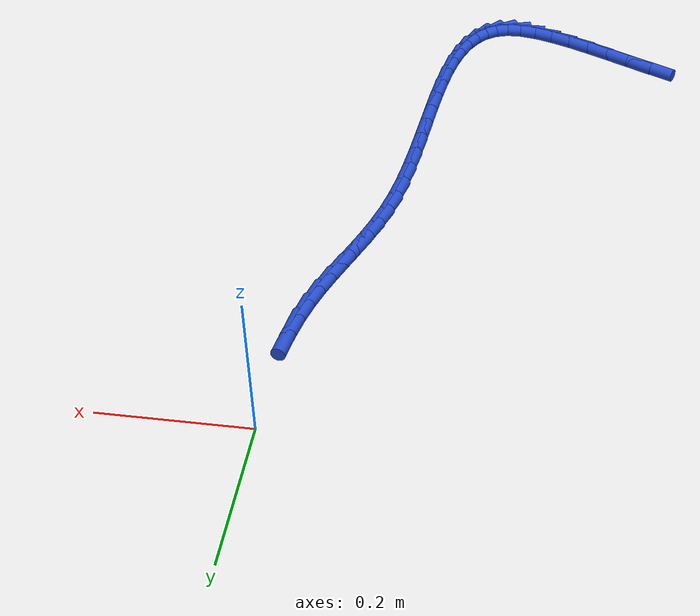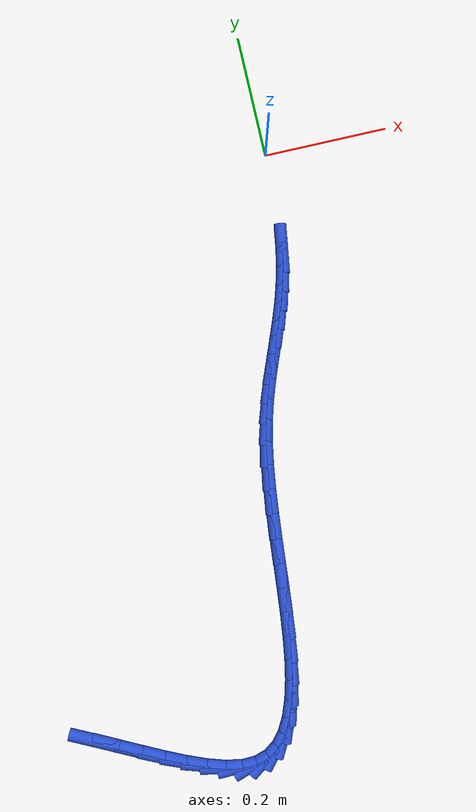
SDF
<sdf version="1.6">
 <world name="default">
  <model name="ground_plane">
   <static>1</static>
   <link name="link">
    <collision name="collision">
     <geometry><plane><normal>0 0 1</normal><size>100 100</size></plane></geometry>
     <surface><friction><ode><mu>100</mu><mu2>50</mu2></ode></friction></surface>
    </collision>
    <visual name="visual">
     <cast_shadows>0</cast_shadows>
     <geometry><plane><normal>0 0 1</normal><size>100 100</size></plane></geometry>
     <material>
      <script><uri>file://media/materials/scripts/gazebo.material</uri><name>Gazebo/WhiteGlow</name></script>
     </material>
    </visual>
   </link>
  </model>
  <model name="line">
   <link name="link_241">
    <pose>-0.46854521471309013 -0.8454449415649856 0.01 0 1.57 -0.45310883844796124</pose>
    <collision name="collision">
     <geometry><cylinder><radius>0.01</radius><length>0.08</length></cylinder></geometry>
    </collision>
    <visual name="visual">
     <material>
      <script><name>Gazebo/Blue</name><uri>file://media/materials/scripts/gazebo.material</uri></script>
     </material>
     <geometry><cylinder><radius>0.01</radius><length>0.08</length></cylinder></geometry>
    </visual>
   </link>
   <link name="link_242">
    <pose>-0.4353253451801201 -0.8616195334748683 0.01 0 1.57 -0.46348880256317543</pose>
    <collision name="collision">
     <geometry><cylinder><radius>0.01</radius><length>0.08</length></cylinder></geometry>
    </collision>
    <visual name="visual">
     <material>
      <script><name>Gazebo/Blue</name><uri>file://media/materials/scripts/gazebo.material</uri></script>
     </material>
     <geometry><cylinder><radius>0.01</radius><length>0.08</length></cylinder></geometry>
    </visual>
   </link>
   <link name="link_243">
    <pose>-0.4020266634709821 -0.8782622647979248 0.01 0 1.57 -0.45682262394261386</pose>
    <collision name="collision">
     <geometry><cylinder><radius>0.01</radius><length>0.08</length></cylinder></geometry>
    </collision>
    <visual name="visual">
     <material>
      <script><name>Gazebo/Blue</name><uri>file://media/materials/scripts/gazebo.material</uri></script>
     </material>
     <geometry><cylinder><radius>0.01</radius><length>0.08</length></cylinder></geometry>
    </visual>
   </link>
   <link name="link_244">
    <pose>-0.3691523097839277 -0.8944199324088309 0.01 0 1.57 -0.43175430900217104</pose>
    <collision name="collision">
     <geometry><cylinder><radius>0.01</radius><length>0.08</length></cylinder></geometry>
    </collision>
    <visual name="visual">
     <material>
      <script><name>Gazebo/Blue</name><uri>file://media/materials/scripts/gazebo.material</uri></script>
     </material>
     <geometry><cylinder><radius>0.01</radius><length>0.08</length></cylinder></geometry>
    </visual>
   </link>
   <link name="link_245">
    <pose>-0.337205424317205 -0.9091393331822627 0.01 0 1.57 -0.38393171570951723</pose>
    <collision name="collision">
     <geometry><cylinder><radius>0.01</radius><length>0.08</length></cylinder></geometry>
    </collision>
    <visual name="visual">
     <material>
      <script><name>Gazebo/Blue</name><uri>file://media/materials/scripts/gazebo.material</uri></script>
     </material>
     <geometry><cylinder><radius>0.01</radius><length>0.08</length></cylinder></geometry>
    </visual>
   </link>
   <link name="link_246">
    <pose>-0.30668914726906343 -0.9214672639928969 0.01 0 1.57 -0.30451653050836675</pose>
    <collision name="collision">
     <geometry><cylinder><radius>0.01</radius><length>0.08</length></cylinder></geometry>
    </collision>
    <visual name="visual">
     <material>
      <script><name>Gazebo/Blue</name><uri>file://media/materials/scripts/gazebo.material</uri></script>
     </material>
     <geometry><cylinder><radius>0.01</radius><length>0.08</length></cylinder></geometry>
    </visual>
   </link>
   <link name="link_247">
    <pose>-0.2781066188377519 -0.9304505217154088 0.01 0 1.57 -0.1773210085072413</pose>
    <collision name="collision">
     <geometry><cylinder><radius>0.01</radius><length>0.08</length></cylinder></geometry>
    </collision>
    <visual name="visual">
     <material>
      <script><name>Gazebo/Blue</name><uri>file://media/materials/scripts/gazebo.material</uri></script>
     </material>
     <geometry><cylinder><radius>0.01</radius><length>0.08</length></cylinder></geometry>
    </visual>
   </link>
   <link name="link_248">
    <pose>-0.25196097922151994 -0.9351359032244749 0.01 0 1.57 0.02434930237265028</pose>
    <collision name="collision">
     <geometry><cylinder><radius>0.01</radius><length>0.08</length></cylinder></geometry>
    </collision>
    <visual name="visual">
     <material>
      <script><name>Gazebo/Blue</name><uri>file://media/materials/scripts/gazebo.material</uri></script>
     </material>
     <geometry><cylinder><radius>0.01</radius><length>0.08</length></cylinder></geometry>
    </visual>
   </link>
   <link name="link_249">
    <pose>-0.2287550705917048 -0.9345707438418294 0.01 0 1.57 0.311223000866197</pose>
    <collision name="collision">
     <geometry><cylinder><radius>0.01</radius><length>0.08</length></cylinder></geometry>
    </collision>
    <visual name="visual">
     <material>
      <script><name>Gazebo/Blue</name><uri>file://media/materials/scripts/gazebo.material</uri></script>
     </material>
     <geometry><cylinder><radius>0.01</radius><length>0.08</length></cylinder></geometry>
    </visual>
   </link>
   <link name="link_250">
    <pose>-0.2087986477387928 -0.9281512310496473 0.01 0 1.57 0.6140115449284287</pose>
    <collision name="collision">
     <geometry><cylinder><radius>0.01</radius><length>0.08</length></cylinder></geometry>
    </collision>
    <visual name="visual">
     <material>
      <script><name>Gazebo/Blue</name><uri>file://media/materials/scripts/gazebo.material</uri></script>
     </material>
     <geometry><cylinder><radius>0.01</radius><length>0.08</length></cylinder></geometry>
    </visual>
   </link>
   <link name="link_251">
    <pose>-0.19187622802858054 -0.9162225020208643 0.01 0 1.57 0.8732223643852545</pose>
    <collision name="collision">
     <geometry><cylinder><radius>0.01</radius><length>0.08</length></cylinder></geometry>
    </collision>
    <visual name="visual">
     <material>
      <script><name>Gazebo/Blue</name><uri>file://media/materials/scripts/gazebo.material</uri></script>
     </material>
     <geometry><cylinder><radius>0.01</radius><length>0.08</length></cylinder></geometry>
    </visual>
   </link>
   <link name="link_252">
    <pose>-0.17768386180764856 -0.8992895278370078 0.01 0 1.57 1.0687226968896295</pose>
    <collision name="collision">
     <geometry><cylinder><radius>0.01</radius><length>0.08</length></cylinder></geometry>
    </collision>
    <visual name="visual">
     <material>
      <script><name>Gazebo/Blue</name><uri>file://media/materials/scripts/gazebo.material</uri></script>
     </material>
     <geometry><cylinder><radius>0.01</radius><length>0.08</length></cylinder></geometry>
    </visual>
   </link>
   <link name="link_253">
    <pose>-0.16591759942257858 -0.8778572795796061 0.01 0 1.57 1.208267414431798</pose>
    <collision name="collision">
     <geometry><cylinder><radius>0.01</radius><length>0.08</length></cylinder></geometry>
    </collision>
    <visual name="visual">
     <material>
      <script><name>Gazebo/Blue</name><uri>file://media/materials/scripts/gazebo.material</uri></script>
     </material>
     <geometry><cylinder><radius>0.01</radius><length>0.08</length></cylinder></geometry>
    </visual>
   </link>
   <link name="link_254">
    <pose>-0.15627349121995113 -0.8524307283301862 0.01 0 1.57 1.306484560272446</pose>
    <collision name="collision">
     <geometry><cylinder><radius>0.01</radius><length>0.08</length></cylinder></geometry>
    </collision>
    <visual name="visual">
     <material>
      <script><name>Gazebo/Blue</name><uri>file://media/materials/scripts/gazebo.material</uri></script>
     </material>
     <geometry><cylinder><radius>0.01</radius><length>0.08</length></cylinder></geometry>
    </visual>
   </link>
   <link name="link_255">
    <pose>-0.14844758754634704 -0.8235148451702755 0.01 0 1.57 1.3754633301012658</pose>
    <collision name="collision">
     <geometry><cylinder><radius>0.01</radius><length>0.08</length></cylinder></geometry>
    </collision>
    <visual name="visual">
     <material>
      <script><name>Gazebo/Blue</name><uri>file://media/materials/scripts/gazebo.material</uri></script>
     </material>
     <geometry><cylinder><radius>0.01</radius><length>0.08</length></cylinder></geometry>
    </visual>
   </link>
   <link name="link_256">
    <pose>-0.1421359387483474 -0.791614601181402 0.01 0 1.57 1.4234884448804448</pose>
    <collision name="collision">
     <geometry><cylinder><radius>0.01</radius><length>0.08</length></cylinder></geometry>
    </collision>
    <visual name="visual">
     <material>
      <script><name>Gazebo/Blue</name><uri>file://media/materials/scripts/gazebo.material</uri></script>
     </material>
     <geometry><cylinder><radius>0.01</radius><length>0.08</length></cylinder></geometry>
    </visual>
   </link>
   <link name="link_257">
    <pose>-0.13703459517253294 -0.7572349674450933 0.01 0 1.57 1.4559118585124058</pose>
    <collision name="collision">
     <geometry><cylinder><radius>0.01</radius><length>0.08</length></cylinder></geometry>
    </collision>
    <visual name="visual">
     <material>
      <script><name>Gazebo/Blue</name><uri>file://media/materials/scripts/gazebo.material</uri></script>
     </material>
     <geometry><cylinder><radius>0.01</radius><length>0.08</length></cylinder></geometry>
    </visual>
   </link>
   <link name="link_258">
    <pose>-0.13283960716548476 -0.7208809150428765 0.01 0 1.57 1.476097622874136</pose>
    <collision name="collision">
     <geometry><cylinder><radius>0.01</radius><length>0.08</length></cylinder></geometry>
    </collision>
    <visual name="visual">
     <material>
      <script><name>Gazebo/Blue</name><uri>file://media/materials/scripts/gazebo.material</uri></script>
     </material>
     <geometry><cylinder><radius>0.01</radius><length>0.08</length></cylinder></geometry>
    </visual>
   </link>
   <link name="link_259">
    <pose>-0.12924702507378372 -0.6830574150562797 0.01 0 1.57 1.4860731576339026</pose>
    <collision name="collision">
     <geometry><cylinder><radius>0.01</radius><length>0.08</length></cylinder></geometry>
    </collision>
    <visual name="visual">
     <material>
      <script><name>Gazebo/Blue</name><uri>file://media/materials/scripts/gazebo.material</uri></script>
     </material>
     <geometry><cylinder><radius>0.01</radius><length>0.08</length></cylinder></geometry>
    </visual>
   </link>
   <link name="link_260">
    <pose>-0.12595289924401074 -0.6442694385668302 0.01 0 1.57 1.4869214429348387</pose>
    <collision name="collision">
     <geometry><cylinder><radius>0.01</radius><length>0.08</length></cylinder></geometry>
    </collision>
    <visual name="visual">
     <material>
      <script><name>Gazebo/Blue</name><uri>file://media/materials/scripts/gazebo.material</uri></script>
     </material>
     <geometry><cylinder><radius>0.01</radius><length>0.08</length></cylinder></geometry>
    </visual>
   </link>
   <link name="link_261">
    <pose>-0.1226532800227467 -0.6050219566560542 0.01 0 1.57 1.478991930154413</pose>
    <collision name="collision">
     <geometry><cylinder><radius>0.01</radius><length>0.08</length></cylinder></geometry>
    </collision>
    <visual name="visual">
     <material>
      <script><name>Gazebo/Blue</name><uri>file://media/materials/scripts/gazebo.material</uri></script>
     </material>
     <geometry><cylinder><radius>0.01</radius><length>0.08</length></cylinder></geometry>
    </visual>
   </link>
   <link name="link_262">
    <pose>-0.11904421775657262 -0.5658199404054818 0.01 0 1.57 1.4619837766805956</pose>
    <collision name="collision">
     <geometry><cylinder><radius>0.01</radius><length>0.08</length></cylinder></geometry>
    </collision>
    <visual name="visual">
     <material>
      <script><name>Gazebo/Blue</name><uri>file://media/materials/scripts/gazebo.material</uri></script>
     </material>
     <geometry><cylinder><radius>0.01</radius><length>0.08</length></cylinder></geometry>
    </visual>
   </link>
   <link name="link_263">
    <pose>-0.11482176279206939 -0.5271683608966394 0.01 0 1.57 1.4349279434816062</pose>
    <collision name="collision">
     <geometry><cylinder><radius>0.01</radius><length>0.08</length></cylinder></geometry>
    </collision>
    <visual name="visual">
     <material>
      <script><name>Gazebo/Blue</name><uri>file://media/materials/scripts/gazebo.material</uri></script>
     </material>
     <geometry><cylinder><radius>0.01</radius><length>0.08</length></cylinder></geometry>
    </visual>
   </link>
   <link name="link_264">
    <pose>-0.10968196547581799 -0.4895721892110547 0.01 0 1.57 1.396074831398143</pose>
    <collision name="collision">
     <geometry><cylinder><radius>0.01</radius><length>0.08</length></cylinder></geometry>
    </collision>
    <visual name="visual">
     <material>
      <script><name>Gazebo/Blue</name><uri>file://media/materials/scripts/gazebo.material</uri></script>
     </material>
     <geometry><cylinder><radius>0.01</radius><length>0.08</length></cylinder></geometry>
    </visual>
   </link>
   <link name="link_265">
    <pose>-0.10332087615439928 -0.4535363964302552 0.01 0 1.57 1.3430440508365293</pose>
    <collision name="collision">
     <geometry><cylinder><radius>0.01</radius><length>0.08</length></cylinder></geometry>
    </collision>
    <visual name="visual">
     <material>
      <script><name>Gazebo/Blue</name><uri>file://media/materials/scripts/gazebo.material</uri></script>
     </material>
     <geometry><cylinder><radius>0.01</radius><length>0.08</length></cylinder></geometry>
    </visual>
   </link>
   <link name="link_266">
    <pose>-0.09544447335809758 -0.41955322943864654 0.01 0 1.57 1.2850113518326844</pose>
    <collision name="collision">
     <geometry><cylinder><radius>0.01</radius><length>0.08</length></cylinder></geometry>
    </collision>
    <visual name="visual">
     <material>
      <script><name>Gazebo/Blue</name><uri>file://media/materials/scripts/gazebo.material</uri></script>
     </material>
     <geometry><cylinder><radius>0.01</radius><length>0.08</length></cylinder></geometry>
    </visual>
   </link>
   <link name="link_267">
    <pose>-0.08608438522245837 -0.3876975748164937 0.01 0 1.57 1.2380576516491388</pose>
    <collision name="collision">
     <geometry><cylinder><radius>0.01</radius><length>0.08</length></cylinder></geometry>
    </collision>
    <visual name="visual">
     <material>
      <script><name>Gazebo/Blue</name><uri>file://media/materials/scripts/gazebo.material</uri></script>
     </material>
     <geometry><cylinder><radius>0.01</radius><length>0.08</length></cylinder></geometry>
    </visual>
   </link>
   <link name="link_268">
    <pose>-0.07566335405279812 -0.35754305789205354 0.01 0 1.57 1.2061241565812642</pose>
    <collision name="collision">
     <geometry><cylinder><radius>0.01</radius><length>0.08</length></cylinder></geometry>
    </collision>
    <visual name="visual">
     <material>
      <script><name>Gazebo/Blue</name><uri>file://media/materials/scripts/gazebo.material</uri></script>
     </material>
     <geometry><cylinder><radius>0.01</radius><length>0.08</length></cylinder></geometry>
    </visual>
   </link>
   <link name="link_269">
    <pose>-0.06462728112187008 -0.3286336229083397 0.01 0 1.57 1.191607335876341</pose>
    <collision name="collision">
     <geometry><cylinder><radius>0.01</radius><length>0.08</length></cylinder></geometry>
    </collision>
    <visual name="visual">
     <material>
      <script><name>Gazebo/Blue</name><uri>file://media/materials/scripts/gazebo.material</uri></script>
     </material>
     <geometry><cylinder><radius>0.01</radius><length>0.08</length></cylinder></geometry>
    </visual>
   </link>
   <link name="link_270">
    <pose>-0.0534220677024273 -0.30051321410836507 0.01 0 1.57 1.1960899331978456</pose>
    <collision name="collision">
     <geometry><cylinder><radius>0.01</radius><length>0.08</length></cylinder></geometry>
    </collision>
    <visual name="visual">
     <material>
      <script><name>Gazebo/Blue</name><uri>file://media/materials/scripts/gazebo.material</uri></script>
     </material>
     <geometry><cylinder><radius>0.01</radius><length>0.08</length></cylinder></geometry>
    </visual>
   </link>
   <link name="link_271">
    <pose>-0.042493615067223815 -0.27272577573514517 0.01 0 1.57 1.2202382866155237</pose>
    <collision name="collision">
     <geometry><cylinder><radius>0.01</radius><length>0.08</length></cylinder></geometry>
    </collision>
    <visual name="visual">
     <material>
      <script><name>Gazebo/Blue</name><uri>file://media/materials/scripts/gazebo.material</uri></script>
     </material>
     <geometry><cylinder><radius>0.01</radius><length>0.08</length></cylinder></geometry>
    </visual>
   </link>
   <link name="link_272">
    <pose>-0.03228782448901262 -0.24481525203169294 0.01 0 1.57 1.2635901098370952</pose>
    <collision name="collision">
     <geometry><cylinder><radius>0.01</radius><length>0.08</length></cylinder></geometry>
    </collision>
    <visual name="visual">
     <material>
      <script><name>Gazebo/Blue</name><uri>file://media/materials/scripts/gazebo.material</uri></script>
     </material>
     <geometry><cylinder><radius>0.01</radius><length>0.08</length></cylinder></geometry>
    </visual>
   </link>
   <link name="link_273">
    <pose>-0.023249799671724213 -0.21632658208269115 0.01 0 1.57 1.3184723350604644</pose>
    <collision name="collision">
     <geometry><cylinder><radius>0.01</radius><length>0.08</length></cylinder></geometry>
    </collision>
    <visual name="visual">
     <material>
      <script><name>Gazebo/Blue</name><uri>file://media/materials/scripts/gazebo.material</uri></script>
     </material>
     <geometry><cylinder><radius>0.01</radius><length>0.08</length></cylinder></geometry>
    </visual>
   </link>
   <link name="link_274">
    <pose>-0.015683796520959258 -0.18698039044944542 0.01 0 1.57 1.3711758036567272</pose>
    <collision name="collision">
     <geometry><cylinder><radius>0.01</radius><length>0.08</length></cylinder></geometry>
    </collision>
    <visual name="visual">
     <material>
      <script><name>Gazebo/Blue</name><uri>file://media/materials/scripts/gazebo.material</uri></script>
     </material>
     <geometry><cylinder><radius>0.01</radius><length>0.08</length></cylinder></geometry>
    </visual>
   </link>
   <link name="link_275">
    <pose>-0.009592670738817586 -0.15687325104450509 0.01 0 1.57 1.4205124583723319</pose>
    <collision name="collision">
     <geometry><cylinder><radius>0.01</radius><length>0.08</length></cylinder></geometry>
    </collision>
    <visual name="visual">
     <material>
      <script><name>Gazebo/Blue</name><uri>file://media/materials/scripts/gazebo.material</uri></script>
     </material>
     <geometry><cylinder><radius>0.01</radius><length>0.08</length></cylinder></geometry>
    </visual>
   </link>
  </model>
 </world>
</sdf>
